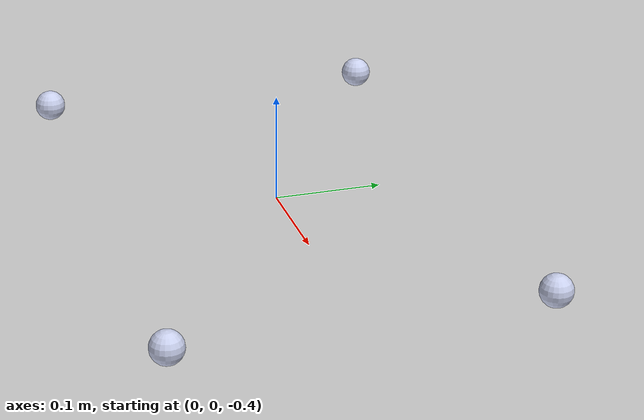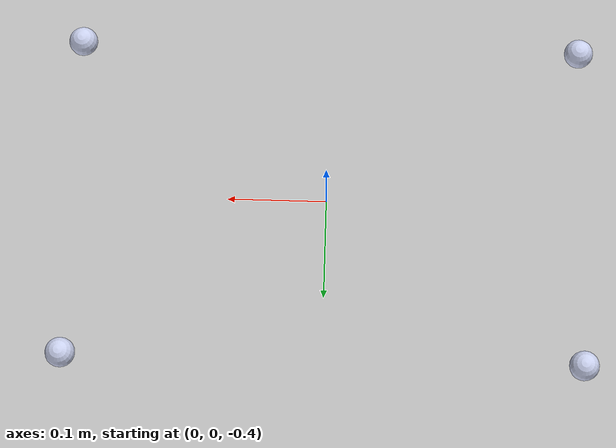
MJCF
<mujoco model="GO2">
  <compiler angle="radian"/>
  <worldbody>
    <body name="FL_hip" pos="0.1966 0.085001 0.0024868">
      <inertial pos="0.047304 -0.0004014 7.85e-05" quat="0.697792 -0.0033594 -0.00340057 0.716285" mass="0.29039" diaginertia="0.000331578 0.000216825 0.000174996"/>
      <joint name="FL_hip_joint" pos="0 0 0" axis="1 0 0" range="-0.35 0.35" actuatorfrcrange="-8 8"/>
      <body name="FL_thigh" pos="0.059999 0.020399 0">
        <inertial pos="-0.0028202 0.042698 -0.0252155" quat="0.708784 -0.0250879 -0.0296565 0.704355" mass="0.5538" diaginertia="0.00157436 0.00130961 0.000288333"/>
        <joint name="FL_thigh_joint" pos="0 0 0" axis="0 1 0" range="-0.2 1.4" actuatorfrcrange="-8 8"/>
        <body name="FL_calf" pos="0 0.0591 -0.19399">
          <inertial pos="0.00859349 3.09319e-06 -0.088081" quat="0.706896 0.0169337 0.0169382 0.706912" mass="0.0922504" diaginertia="0.000474241 0.000468626 9.91523e-06"/>
          <joint name="FL_calf_joint" pos="0 0 0" axis="0 1 0" range="-2.8 -1.2" actuatorfrcrange="-8 8"/>
          <geom size="0.014796" pos="-1.26e-05 0 -0.19819" rgba="0.796078 0.823529 0.937255 1"/>
        </body>
      </body>
    </body>
    <body name="FR_hip" pos="0.1966 -0.0849992 0.0024868">
      <inertial pos="0.0473043 0.0003998 -5.21e-05" quat="0.716285 0.00340057 0.0033594 0.697792" mass="0.290394" diaginertia="0.000331578 0.000216825 0.000174996"/>
      <joint name="FR_hip_joint" pos="0 0 0" axis="1 0 0" range="-0.35 0.35" actuatorfrcrange="-8 8"/>
      <body name="FR_thigh" pos="0.0599992 -0.0204008 2.65e-05">
        <inertial pos="-0.0032999 -0.042913 -0.026306" quat="0.704329 -0.0300809 -0.0255121 0.708777" mass="0.56127" diaginertia="0.00159266 0.00132639 0.000289948"/>
        <joint name="FR_thigh_joint" pos="0 0 0" axis="0 1 0" range="-0.2 1.4" actuatorfrcrange="-8 8"/>
        <body name="FR_calf" pos="0 -0.0591 -0.194013">
          <inertial pos="0.00859349 -4.54881e-06 -0.0880809" quat="0.706915 0.0169392 0.0169327 0.706892" mass="0.0922499" diaginertia="0.000474241 0.000468626 9.91523e-06"/>
          <joint name="FR_calf_joint" pos="0 0 0" axis="0 1 0" range="-2.8 -1.2" actuatorfrcrange="-8 8"/>
          <geom size="0.014796" pos="-1.26e-05 0 -0.19819" rgba="0.796078 0.823529 0.937255 1"/>
        </body>
      </body>
    </body>
    <body name="RL_hip" pos="-0.1966 0.0850008 0.0025132">
      <inertial pos="-0.0473043 -0.0004014 -7.85e-05" quat="0.716285 -0.00340057 -0.0033594 0.697792" mass="0.290394" diaginertia="0.000331578 0.000216825 0.000174996"/>
      <joint name="RL_hip_joint" pos="0 0 0" axis="1 0 0" range="-0.35 0.35" actuatorfrcrange="-8 8"/>
      <body name="RL_thigh" pos="-0.0599992 0.0203992 0">
        <inertial pos="-0.0028225 0.0426963 -0.0252023" quat="0.708784 -0.0250879 -0.0296565 0.704355" mass="0.55367" diaginertia="0.00157436 0.00130961 0.000288333"/>
        <joint name="RL_thigh_joint" pos="0 0 0" axis="0 1 0" range="-0.2 1.4" actuatorfrcrange="-8 8"/>
        <body name="RL_calf" pos="0 0.05865 -0.194014">
          <inertial pos="0.00859349 3.09319e-06 -0.0880809" quat="0.706896 0.0169337 0.0169382 0.706912" mass="0.0922499" diaginertia="0.000474241 0.000468626 9.91523e-06"/>
          <joint name="RL_calf_joint" pos="0 0 0" axis="0 1 0" range="-2.8 -1.2" actuatorfrcrange="-8 8"/>
          <geom size="0.014796" pos="-1.26e-05 0 -0.19819" rgba="0.796078 0.823529 0.937255 1"/>
        </body>
      </body>
    </body>
    <body name="RR_hip" pos="-0.1966 -0.0849992 0.0025132">
      <inertial pos="-0.0473043 0.0003998 5.21e-05" quat="0.697792 0.0033594 0.00340057 0.716285" mass="0.290394" diaginertia="0.000331578 0.000216825 0.000174996"/>
      <joint name="RR_hip_joint" pos="0 0 0" axis="1 0 0" range="-0.35 0.35" actuatorfrcrange="-8 8"/>
      <body name="RR_thigh" pos="-0.059999 -0.020401 -2.65e-05">
        <inertial pos="-0.0028794 -0.0426709 -0.025146" quat="0.704278 -0.0309635 -0.0263827 0.708758" mass="0.553031" diaginertia="0.00157396 0.00130808 0.000289457"/>
        <joint name="RR_thigh_joint" pos="0 0 0" axis="0 1 0" range="-0.2 1.4" actuatorfrcrange="-8 8"/>
        <body name="RR_calf" pos="0 -0.0591 -0.193987">
          <inertial pos="0.00859349 -4.54881e-06 -0.0880809" quat="0.706915 0.0169392 0.0169327 0.706892" mass="0.0922499" diaginertia="0.000474241 0.000468626 9.91523e-06"/>
          <joint name="RR_calf_joint" pos="0 0 0" axis="0 1 0" range="-2.8 -1.2" actuatorfrcrange="-8 8"/>
          <geom size="0.014796" pos="-1.26e-05 0 -0.19819" rgba="0.796078 0.823529 0.937255 1"/>
        </body>
      </body>
    </body>
  </worldbody>
</mujoco>
